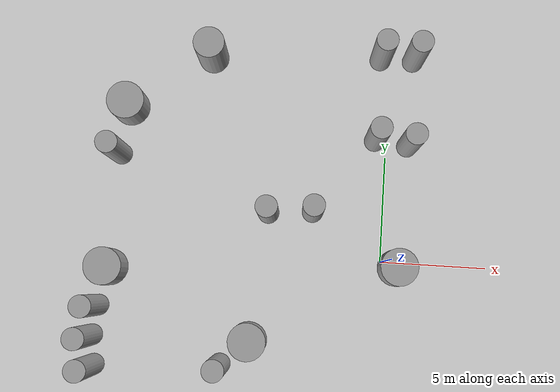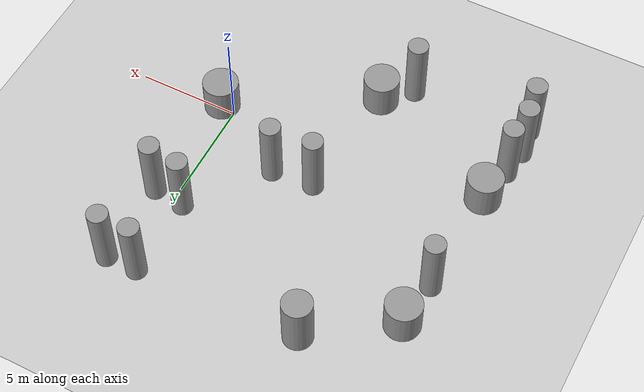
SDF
<sdf version="1.7">
 <world name="default">
  <model name="ground_plane">
   <static>1</static>
   <link name="link">
    <collision name="collision">
     <geometry><plane><normal>0 0 1</normal><size>100 100</size></plane></geometry>
     <surface>
      <contact><collide_bitmask>65535</collide_bitmask></contact>
      <friction><ode><mu>100</mu><mu2>50</mu2></ode></friction>
     </surface>
    </collision>
    <visual name="visual">
     <cast_shadows>0</cast_shadows>
     <geometry><plane><normal>0 0 1</normal><size>100 100</size></plane></geometry>
     <material>
      <script><uri>file://media/materials/scripts/gazebo.material</uri><name>Gazebo/Grey</name></script>
     </material>
    </visual>
   </link>
  </model>
  <model name="long_cylinder">
   <link name="link_5">
    <inertial>
     <mass>3.60259</mass>
     <inertia><ixx>4.12154</ixx><ixy>0</ixy><ixz>0</ixz><iyy>4.12154</iyy><iyz>0</iyz><izz>0.450323</izz></inertia>
    </inertial>
    <pose>0 -2e-06 0 0 -0 0</pose>
    <visual name="visual">
     <geometry><cylinder><radius>0.5</radius><length>3.60259</length></cylinder></geometry>
     <material>
      <lighting>1</lighting>
      <script><uri>file://media/materials/scripts/gazebo.material</uri><name>Gazebo/Grey</name></script>
      <shader type="pixel"/>
      <emissive>0 0 0 1</emissive>
     </material>
    </visual>
    <collision name="collision">
     <geometry><cylinder><radius>0.5</radius><length>3.60258</length></cylinder></geometry>
     <surface>
      <friction>
       <ode><mu>1</mu><mu2>1</mu2><fdir1>0 0 0</fdir1><slip1>0</slip1><slip2>0</slip2></ode>
       <torsional>
        <coefficient>1</coefficient>
        <patch_radius>0</patch_radius>
        <surface_radius>0</surface_radius>
        <use_patch_radius>1</use_patch_radius>
        <ode><slip>0</slip></ode>
       </torsional>
      </friction>
      <bounce><restitution_coefficient>0</restitution_coefficient><threshold>1e+06</threshold></bounce>
      <contact>
       <collide_without_contact>0</collide_without_contact>
       <collide_without_contact_bitmask>1</collide_without_contact_bitmask>
       <collide_bitmask>1</collide_bitmask>
       <ode>
        <soft_cfm>0</soft_cfm>
        <soft_erp>0.2</soft_erp>
        <kp>1e+13</kp>
        <kd>1</kd>
        <max_vel>0.01</max_vel>
        <min_depth>0</min_depth>
       </ode>
       <bullet>
        <split_impulse>1</split_impulse>
        <split_impulse_penetration_threshold>-0.01</split_impulse_penetration_threshold>
        <soft_cfm>0</soft_cfm>
        <soft_erp>0.2</soft_erp>
        <kp>1e+13</kp>
        <kd>1</kd>
       </bullet>
      </contact>
     </surface>
    </collision>
   </link>
   <static>0</static>
   <pose>1.0868 9.76973 1.80129 0 -0 0</pose>
  </model>
  <model name="long_cylinder_0">
   <link name="link_5">
    <inertial>
     <mass>3.60259</mass>
     <inertia><ixx>4.12154</ixx><ixy>0</ixy><ixz>0</ixz><iyy>4.12154</iyy><iyz>0</iyz><izz>0.450323</izz></inertia>
    </inertial>
    <pose>0 -2e-06 0 0 -0 0</pose>
    <visual name="visual">
     <geometry><cylinder><radius>0.5</radius><length>3.60259</length></cylinder></geometry>
     <material>
      <lighting>1</lighting>
      <script><uri>file://media/materials/scripts/gazebo.material</uri><name>Gazebo/Grey</name></script>
      <shader type="pixel"/>
      <emissive>0 0 0 1</emissive>
     </material>
    </visual>
    <collision name="collision">
     <geometry><cylinder><radius>0.5</radius><length>3.60258</length></cylinder></geometry>
     <surface>
      <friction>
       <ode><mu>1</mu><mu2>1</mu2><fdir1>0 0 0</fdir1><slip1>0</slip1><slip2>0</slip2></ode>
       <torsional>
        <coefficient>1</coefficient>
        <patch_radius>0</patch_radius>
        <surface_radius>0</surface_radius>
        <use_patch_radius>1</use_patch_radius>
        <ode><slip>0</slip></ode>
       </torsional>
      </friction>
      <bounce><restitution_coefficient>0</restitution_coefficient><threshold>1e+06</threshold></bounce>
      <contact>
       <collide_without_contact>0</collide_without_contact>
       <collide_without_contact_bitmask>1</collide_without_contact_bitmask>
       <collide_bitmask>1</collide_bitmask>
       <ode>
        <soft_cfm>0</soft_cfm>
        <soft_erp>0.2</soft_erp>
        <kp>1e+13</kp>
        <kd>1</kd>
        <max_vel>0.01</max_vel>
        <min_depth>0</min_depth>
       </ode>
       <bullet>
        <split_impulse>1</split_impulse>
        <split_impulse_penetration_threshold>-0.01</split_impulse_penetration_threshold>
        <soft_cfm>0</soft_cfm>
        <soft_erp>0.2</soft_erp>
        <kp>1e+13</kp>
        <kd>1</kd>
       </bullet>
      </contact>
     </surface>
    </collision>
   </link>
   <static>0</static>
   <pose>1.01152 5.61061 1.80129 0 -0 0</pose>
  </model>
  <model name="big_cylinder_3">
   <link name="link_6">
    <inertial>
     <mass>5.40188</mass>
     <inertia><ixx>2.45932</ixx><ixy>0</ixy><ixz>0</ixz><iyy>2.45932</iyy><iyz>0</iyz><izz>2.03968</izz></inertia>
    </inertial>
    <pose>3e-06 3e-06 0 0 -0 0</pose>
    <visual name="visual">
     <geometry><cylinder><radius>0.869008</radius><length>1.78822</length></cylinder></geometry>
     <material>
      <lighting>1</lighting>
      <script><uri>file://media/materials/scripts/gazebo.material</uri><name>Gazebo/Grey</name></script>
      <shader type="pixel"/>
     </material>
    </visual>
    <collision name="collision">
     <geometry><cylinder><radius>0.869008</radius><length>1.78822</length></cylinder></geometry>
     <surface>
      <friction>
       <ode><mu>1</mu><mu2>1</mu2><fdir1>0 0 0</fdir1><slip1>0</slip1><slip2>0</slip2></ode>
       <torsional>
        <coefficient>1</coefficient>
        <patch_radius>0</patch_radius>
        <surface_radius>0</surface_radius>
        <use_patch_radius>1</use_patch_radius>
        <ode><slip>0</slip></ode>
       </torsional>
      </friction>
      <bounce><restitution_coefficient>0</restitution_coefficient><threshold>1e+06</threshold></bounce>
      <contact>
       <collide_without_contact>0</collide_without_contact>
       <collide_without_contact_bitmask>1</collide_without_contact_bitmask>
       <collide_bitmask>1</collide_bitmask>
       <ode>
        <soft_cfm>0</soft_cfm>
        <soft_erp>0.2</soft_erp>
        <kp>1e+13</kp>
        <kd>1</kd>
        <max_vel>0.01</max_vel>
        <min_depth>0</min_depth>
       </ode>
       <bullet>
        <split_impulse>1</split_impulse>
        <split_impulse_penetration_threshold>-0.01</split_impulse_penetration_threshold>
        <soft_cfm>0</soft_cfm>
        <soft_erp>0.2</soft_erp>
        <kp>1e+13</kp>
        <kd>1</kd>
       </bullet>
      </contact>
     </surface>
    </collision>
   </link>
   <static>0</static>
   <pose>0.750403 -0.209836 0.89411 0 -0 0</pose>
  </model>
  <model name="long_cylinder_1">
   <link name="link_5">
    <inertial>
     <mass>3.60259</mass>
     <inertia><ixx>4.12154</ixx><ixy>0</ixy><ixz>0</ixz><iyy>4.12154</iyy><iyz>0</iyz><izz>0.450323</izz></inertia>
    </inertial>
    <pose>0 -2e-06 0 0 -0 0</pose>
    <visual name="visual">
     <geometry><cylinder><radius>0.5</radius><length>3.60259</length></cylinder></geometry>
     <material>
      <lighting>1</lighting>
      <script><uri>file://media/materials/scripts/gazebo.material</uri><name>Gazebo/Grey</name></script>
      <shader type="pixel"/>
      <emissive>0 0 0 1</emissive>
     </material>
    </visual>
    <collision name="collision">
     <geometry><cylinder><radius>0.5</radius><length>3.60258</length></cylinder></geometry>
     <surface>
      <friction>
       <ode><mu>1</mu><mu2>1</mu2><fdir1>0 0 0</fdir1><slip1>0</slip1><slip2>0</slip2></ode>
       <torsional>
        <coefficient>1</coefficient>
        <patch_radius>0</patch_radius>
        <surface_radius>0</surface_radius>
        <use_patch_radius>1</use_patch_radius>
        <ode><slip>0</slip></ode>
       </torsional>
      </friction>
      <bounce><restitution_coefficient>0</restitution_coefficient><threshold>1e+06</threshold></bounce>
      <contact>
       <collide_without_contact>0</collide_without_contact>
       <collide_without_contact_bitmask>1</collide_without_contact_bitmask>
       <collide_bitmask>1</collide_bitmask>
       <ode>
        <soft_cfm>0</soft_cfm>
        <soft_erp>0.2</soft_erp>
        <kp>1e+13</kp>
        <kd>1</kd>
        <max_vel>0.01</max_vel>
        <min_depth>0</min_depth>
       </ode>
       <bullet>
        <split_impulse>1</split_impulse>
        <split_impulse_penetration_threshold>-0.01</split_impulse_penetration_threshold>
        <soft_cfm>0</soft_cfm>
        <soft_erp>0.2</soft_erp>
        <kp>1e+13</kp>
        <kd>1</kd>
       </bullet>
      </contact>
     </surface>
    </collision>
   </link>
   <static>0</static>
   <pose>-13.1256 -5.521 1.80129 0 -0 0</pose>
  </model>
  <model name="long_cylinder_2">
   <link name="link_5">
    <inertial>
     <mass>3.60259</mass>
     <inertia><ixx>4.12154</ixx><ixy>0</ixy><ixz>0</ixz><iyy>4.12154</iyy><iyz>0</iyz><izz>0.450323</izz></inertia>
    </inertial>
    <pose>0 -2e-06 0 0 -0 0</pose>
    <visual name="visual">
     <geometry><cylinder><radius>0.5</radius><length>3.60259</length></cylinder></geometry>
     <material>
      <lighting>1</lighting>
      <script><uri>file://media/materials/scripts/gazebo.material</uri><name>Gazebo/Grey</name></script>
      <shader type="pixel"/>
      <emissive>0 0 0 1</emissive>
     </material>
    </visual>
    <collision name="collision">
     <geometry><cylinder><radius>0.5</radius><length>3.60258</length></cylinder></geometry>
     <surface>
      <friction>
       <ode><mu>1</mu><mu2>1</mu2><fdir1>0 0 0</fdir1><slip1>0</slip1><slip2>0</slip2></ode>
       <torsional>
        <coefficient>1</coefficient>
        <patch_radius>0</patch_radius>
        <surface_radius>0</surface_radius>
        <use_patch_radius>1</use_patch_radius>
        <ode><slip>0</slip></ode>
       </torsional>
      </friction>
      <bounce><restitution_coefficient>0</restitution_coefficient><threshold>1e+06</threshold></bounce>
      <contact>
       <collide_without_contact>0</collide_without_contact>
       <collide_without_contact_bitmask>1</collide_without_contact_bitmask>
       <collide_bitmask>1</collide_bitmask>
       <ode>
        <soft_cfm>0</soft_cfm>
        <soft_erp>0.2</soft_erp>
        <kp>1e+13</kp>
        <kd>1</kd>
        <max_vel>0.01</max_vel>
        <min_depth>0</min_depth>
       </ode>
       <bullet>
        <split_impulse>1</split_impulse>
        <split_impulse_penetration_threshold>-0.01</split_impulse_penetration_threshold>
        <soft_cfm>0</soft_cfm>
        <soft_erp>0.2</soft_erp>
        <kp>1e+13</kp>
        <kd>1</kd>
       </bullet>
      </contact>
     </surface>
    </collision>
   </link>
   <static>0</static>
   <pose>-13.3092 -4.16594 1.80129 0 -0 0</pose>
  </model>
  <model name="long_cylinder_3">
   <link name="link_5">
    <inertial>
     <mass>3.60259</mass>
     <inertia><ixx>4.12154</ixx><ixy>0</ixy><ixz>0</ixz><iyy>4.12154</iyy><iyz>0</iyz><izz>0.450323</izz></inertia>
    </inertial>
    <pose>0 -2e-06 0 0 -0 0</pose>
    <visual name="visual">
     <geometry><cylinder><radius>0.5</radius><length>3.60259</length></cylinder></geometry>
     <material>
      <lighting>1</lighting>
      <script><uri>file://media/materials/scripts/gazebo.material</uri><name>Gazebo/Grey</name></script>
      <shader type="pixel"/>
      <emissive>0 0 0 1</emissive>
     </material>
    </visual>
    <collision name="collision">
     <geometry><cylinder><radius>0.5</radius><length>3.60258</length></cylinder></geometry>
     <surface>
      <friction>
       <ode><mu>1</mu><mu2>1</mu2><fdir1>0 0 0</fdir1><slip1>0</slip1><slip2>0</slip2></ode>
       <torsional>
        <coefficient>1</coefficient>
        <patch_radius>0</patch_radius>
        <surface_radius>0</surface_radius>
        <use_patch_radius>1</use_patch_radius>
        <ode><slip>0</slip></ode>
       </torsional>
      </friction>
      <bounce><restitution_coefficient>0</restitution_coefficient><threshold>1e+06</threshold></bounce>
      <contact>
       <collide_without_contact>0</collide_without_contact>
       <collide_without_contact_bitmask>1</collide_without_contact_bitmask>
       <collide_bitmask>1</collide_bitmask>
       <ode>
        <soft_cfm>0</soft_cfm>
        <soft_erp>0.2</soft_erp>
        <kp>1e+13</kp>
        <kd>1</kd>
        <max_vel>0.01</max_vel>
        <min_depth>0</min_depth>
       </ode>
       <bullet>
        <split_impulse>1</split_impulse>
        <split_impulse_penetration_threshold>-0.01</split_impulse_penetration_threshold>
        <soft_cfm>0</soft_cfm>
        <soft_erp>0.2</soft_erp>
        <kp>1e+13</kp>
        <kd>1</kd>
       </bullet>
      </contact>
     </surface>
    </collision>
   </link>
   <static>0</static>
   <pose>-13.1272 -2.76523 1.80129 0 -0 0</pose>
  </model>
  <model name="big_cylinder_4">
   <link name="link_6">
    <inertial>
     <mass>5.40188</mass>
     <inertia><ixx>2.45932</ixx><ixy>0</ixy><ixz>0</ixz><iyy>2.45932</iyy><iyz>0</iyz><izz>2.03968</izz></inertia>
    </inertial>
    <pose>3e-06 3e-06 0 0 -0 0</pose>
    <visual name="visual">
     <geometry><cylinder><radius>0.869008</radius><length>1.78822</length></cylinder></geometry>
     <material>
      <lighting>1</lighting>
      <script><uri>file://media/materials/scripts/gazebo.material</uri><name>Gazebo/Grey</name></script>
      <shader type="pixel"/>
     </material>
    </visual>
    <collision name="collision">
     <geometry><cylinder><radius>0.869008</radius><length>1.78822</length></cylinder></geometry>
     <surface>
      <friction>
       <ode><mu>1</mu><mu2>1</mu2><fdir1>0 0 0</fdir1><slip1>0</slip1><slip2>0</slip2></ode>
       <torsional>
        <coefficient>1</coefficient>
        <patch_radius>0</patch_radius>
        <surface_radius>0</surface_radius>
        <use_patch_radius>1</use_patch_radius>
        <ode><slip>0</slip></ode>
       </torsional>
      </friction>
      <bounce><restitution_coefficient>0</restitution_coefficient><threshold>1e+06</threshold></bounce>
      <contact>
       <collide_without_contact>0</collide_without_contact>
       <collide_without_contact_bitmask>1</collide_without_contact_bitmask>
       <collide_bitmask>1</collide_bitmask>
       <ode>
        <soft_cfm>0</soft_cfm>
        <soft_erp>0.2</soft_erp>
        <kp>1e+13</kp>
        <kd>1</kd>
        <max_vel>0.01</max_vel>
        <min_depth>0</min_depth>
       </ode>
       <bullet>
        <split_impulse>1</split_impulse>
        <split_impulse_penetration_threshold>-0.01</split_impulse_penetration_threshold>
        <soft_cfm>0</soft_cfm>
        <soft_erp>0.2</soft_erp>
        <kp>1e+13</kp>
        <kd>1</kd>
       </bullet>
      </contact>
     </surface>
    </collision>
   </link>
   <static>0</static>
   <pose>-12.7305 -0.952589 0.89411 0 -0 0</pose>
  </model>
  <model name="long_cylinder_4">
   <link name="link_5">
    <inertial>
     <mass>3.60259</mass>
     <inertia><ixx>4.12154</ixx><ixy>0</ixy><ixz>0</ixz><iyy>4.12154</iyy><iyz>0</iyz><izz>0.450323</izz></inertia>
    </inertial>
    <pose>0 -2e-06 0 0 -0 0</pose>
    <visual name="visual">
     <geometry><cylinder><radius>0.5</radius><length>3.60259</length></cylinder></geometry>
     <material>
      <lighting>1</lighting>
      <script><uri>file://media/materials/scripts/gazebo.material</uri><name>Gazebo/Grey</name></script>
      <shader type="pixel"/>
      <emissive>0 0 0 1</emissive>
     </material>
    </visual>
    <collision name="collision">
     <geometry><cylinder><radius>0.5</radius><length>3.60258</length></cylinder></geometry>
     <surface>
      <friction>
       <ode><mu>1</mu><mu2>1</mu2><fdir1>0 0 0</fdir1><slip1>0</slip1><slip2>0</slip2></ode>
       <torsional>
        <coefficient>1</coefficient>
        <patch_radius>0</patch_radius>
        <surface_radius>0</surface_radius>
        <use_patch_radius>1</use_patch_radius>
        <ode><slip>0</slip></ode>
       </torsional>
      </friction>
      <bounce><restitution_coefficient>0</restitution_coefficient><threshold>1e+06</threshold></bounce>
      <contact>
       <collide_without_contact>0</collide_without_contact>
       <collide_without_contact_bitmask>1</collide_without_contact_bitmask>
       <collide_bitmask>1</collide_bitmask>
       <ode>
        <soft_cfm>0</soft_cfm>
        <soft_erp>0.2</soft_erp>
        <kp>1e+13</kp>
        <kd>1</kd>
        <max_vel>0.01</max_vel>
        <min_depth>0</min_depth>
       </ode>
       <bullet>
        <split_impulse>1</split_impulse>
        <split_impulse_penetration_threshold>-0.01</split_impulse_penetration_threshold>
        <soft_cfm>0</soft_cfm>
        <soft_erp>0.2</soft_erp>
        <kp>1e+13</kp>
        <kd>1</kd>
       </bullet>
      </contact>
     </surface>
    </collision>
   </link>
   <static>0</static>
   <pose>-5.39755 2.03438 1.80129 0 -0 0</pose>
  </model>
  <model name="big_cylinder_5">
   <link name="link_6">
    <inertial>
     <mass>5.40188</mass>
     <inertia><ixx>2.45932</ixx><ixy>0</ixy><ixz>0</ixz><iyy>2.45932</iyy><iyz>0</iyz><izz>2.03968</izz></inertia>
    </inertial>
    <pose>3e-06 3e-06 0 0 -0 0</pose>
    <visual name="visual">
     <geometry><cylinder><radius>0.869008</radius><length>1.78822</length></cylinder></geometry>
     <material>
      <lighting>1</lighting>
      <script><uri>file://media/materials/scripts/gazebo.material</uri><name>Gazebo/Grey</name></script>
      <shader type="pixel"/>
     </material>
    </visual>
    <collision name="collision">
     <geometry><cylinder><radius>0.869008</radius><length>1.78822</length></cylinder></geometry>
     <surface>
      <friction>
       <ode><mu>1</mu><mu2>1</mu2><fdir1>0 0 0</fdir1><slip1>0</slip1><slip2>0</slip2></ode>
       <torsional>
        <coefficient>1</coefficient>
        <patch_radius>0</patch_radius>
        <surface_radius>0</surface_radius>
        <use_patch_radius>1</use_patch_radius>
        <ode><slip>0</slip></ode>
       </torsional>
      </friction>
      <bounce><restitution_coefficient>0</restitution_coefficient><threshold>1e+06</threshold></bounce>
      <contact>
       <collide_without_contact>0</collide_without_contact>
       <collide_without_contact_bitmask>1</collide_without_contact_bitmask>
       <collide_bitmask>1</collide_bitmask>
       <ode>
        <soft_cfm>0</soft_cfm>
        <soft_erp>0.2</soft_erp>
        <kp>1e+13</kp>
        <kd>1</kd>
        <max_vel>0.01</max_vel>
        <min_depth>0</min_depth>
       </ode>
       <bullet>
        <split_impulse>1</split_impulse>
        <split_impulse_penetration_threshold>-0.01</split_impulse_penetration_threshold>
        <soft_cfm>0</soft_cfm>
        <soft_erp>0.2</soft_erp>
        <kp>1e+13</kp>
        <kd>1</kd>
       </bullet>
      </contact>
     </surface>
    </collision>
   </link>
   <static>0</static>
   <pose>-12.2818 6.73654 0.89411 0 -0 0</pose>
  </model>
  <model name="big_cylinder_6">
   <link name="link_6">
    <inertial>
     <mass>5.40188</mass>
     <inertia><ixx>2.45932</ixx><ixy>0</ixy><ixz>0</ixz><iyy>2.45932</iyy><iyz>0</iyz><izz>2.03968</izz></inertia>
    </inertial>
    <pose>3e-06 3e-06 0 0 -0 0</pose>
    <visual name="visual">
     <geometry><cylinder><radius>0.869008</radius><length>1.78822</length></cylinder></geometry>
     <material>
      <lighting>1</lighting>
      <script><uri>file://media/materials/scripts/gazebo.material</uri><name>Gazebo/Grey</name></script>
      <shader type="pixel"/>
     </material>
    </visual>
    <collision name="collision">
     <geometry><cylinder><radius>0.869008</radius><length>1.78822</length></cylinder></geometry>
     <surface>
      <friction>
       <ode><mu>1</mu><mu2>1</mu2><fdir1>0 0 0</fdir1><slip1>0</slip1><slip2>0</slip2></ode>
       <torsional>
        <coefficient>1</coefficient>
        <patch_radius>0</patch_radius>
        <surface_radius>0</surface_radius>
        <use_patch_radius>1</use_patch_radius>
        <ode><slip>0</slip></ode>
       </torsional>
      </friction>
      <bounce><restitution_coefficient>0</restitution_coefficient><threshold>1e+06</threshold></bounce>
      <contact>
       <collide_without_contact>0</collide_without_contact>
       <collide_without_contact_bitmask>1</collide_without_contact_bitmask>
       <collide_bitmask>1</collide_bitmask>
       <ode>
        <soft_cfm>0</soft_cfm>
        <soft_erp>0.2</soft_erp>
        <kp>1e+13</kp>
        <kd>1</kd>
        <max_vel>0.01</max_vel>
        <min_depth>0</min_depth>
       </ode>
       <bullet>
        <split_impulse>1</split_impulse>
        <split_impulse_penetration_threshold>-0.01</split_impulse_penetration_threshold>
        <soft_cfm>0</soft_cfm>
        <soft_erp>0.2</soft_erp>
        <kp>1e+13</kp>
        <kd>1</kd>
       </bullet>
      </contact>
     </surface>
    </collision>
   </link>
   <static>0</static>
   <pose>-5.97401 -3.98716 0.89411 0 -0 0</pose>
  </model>
  <model name="long_cylinder_5">
   <link name="link_5">
    <inertial>
     <mass>3.60259</mass>
     <inertia><ixx>4.12154</ixx><ixy>0</ixy><ixz>0</ixz><iyy>4.12154</iyy><iyz>0</iyz><izz>0.450323</izz></inertia>
    </inertial>
    <pose>0 -2e-06 0 0 -0 0</pose>
    <visual name="visual">
     <geometry><cylinder><radius>0.5</radius><length>3.60259</length></cylinder></geometry>
     <material>
      <lighting>1</lighting>
      <script><uri>file://media/materials/scripts/gazebo.material</uri><name>Gazebo/Grey</name></script>
      <shader type="pixel"/>
      <emissive>0 0 0 1</emissive>
     </material>
    </visual>
    <collision name="collision">
     <geometry><cylinder><radius>0.5</radius><length>3.60258</length></cylinder></geometry>
     <surface>
      <friction>
       <ode><mu>1</mu><mu2>1</mu2><fdir1>0 0 0</fdir1><slip1>0</slip1><slip2>0</slip2></ode>
       <torsional>
        <coefficient>1</coefficient>
        <patch_radius>0</patch_radius>
        <surface_radius>0</surface_radius>
        <use_patch_radius>1</use_patch_radius>
        <ode><slip>0</slip></ode>
       </torsional>
      </friction>
      <bounce><restitution_coefficient>0</restitution_coefficient><threshold>1e+06</threshold></bounce>
      <contact>
       <collide_without_contact>0</collide_without_contact>
       <collide_without_contact_bitmask>1</collide_without_contact_bitmask>
       <collide_bitmask>1</collide_bitmask>
       <ode>
        <soft_cfm>0</soft_cfm>
        <soft_erp>0.2</soft_erp>
        <kp>1e+13</kp>
        <kd>1</kd>
        <max_vel>0.01</max_vel>
        <min_depth>0</min_depth>
       </ode>
       <bullet>
        <split_impulse>1</split_impulse>
        <split_impulse_penetration_threshold>-0.01</split_impulse_penetration_threshold>
        <soft_cfm>0</soft_cfm>
        <soft_erp>0.2</soft_erp>
        <kp>1e+13</kp>
        <kd>1</kd>
       </bullet>
      </contact>
     </surface>
    </collision>
   </link>
   <static>0</static>
   <pose>-7.2424 -5.1601 1.80128 0 -0 0</pose>
  </model>
  <model name="long_cylinder_6">
   <link name="link_5">
    <inertial>
     <mass>3.60259</mass>
     <inertia><ixx>4.12154</ixx><ixy>0</ixy><ixz>0</ixz><iyy>4.12154</iyy><iyz>0</iyz><izz>0.450323</izz></inertia>
    </inertial>
    <pose>0 -2e-06 0 0 -0 0</pose>
    <visual name="visual">
     <geometry><cylinder><radius>0.5</radius><length>3.60259</length></cylinder></geometry>
     <material>
      <lighting>1</lighting>
      <script><uri>file://media/materials/scripts/gazebo.material</uri><name>Gazebo/Grey</name></script>
      <shader type="pixel"/>
      <emissive>0 0 0 1</emissive>
     </material>
    </visual>
    <collision name="collision">
     <geometry><cylinder><radius>0.5</radius><length>3.60258</length></cylinder></geometry>
     <surface>
      <friction>
       <ode><mu>1</mu><mu2>1</mu2><fdir1>0 0 0</fdir1><slip1>0</slip1><slip2>0</slip2></ode>
       <torsional>
        <coefficient>1</coefficient>
        <patch_radius>0</patch_radius>
        <surface_radius>0</surface_radius>
        <use_patch_radius>1</use_patch_radius>
        <ode><slip>0</slip></ode>
       </torsional>
      </friction>
      <bounce><restitution_coefficient>0</restitution_coefficient><threshold>1e+06</threshold></bounce>
      <contact>
       <collide_without_contact>0</collide_without_contact>
       <collide_without_contact_bitmask>1</collide_without_contact_bitmask>
       <collide_bitmask>1</collide_bitmask>
       <ode>
        <soft_cfm>0</soft_cfm>
        <soft_erp>0.2</soft_erp>
        <kp>1e+13</kp>
        <kd>1</kd>
        <max_vel>0.01</max_vel>
        <min_depth>0</min_depth>
       </ode>
       <bullet>
        <split_impulse>1</split_impulse>
        <split_impulse_penetration_threshold>-0.01</split_impulse_penetration_threshold>
        <soft_cfm>0</soft_cfm>
        <soft_erp>0.2</soft_erp>
        <kp>1e+13</kp>
        <kd>1</kd>
       </bullet>
      </contact>
     </surface>
    </collision>
   </link>
   <static>0</static>
   <pose>-3.31447 2.20449 1.80129 0 -0 0</pose>
  </model>
  <model name="long_cylinder_7">
   <link name="link_5">
    <inertial>
     <mass>3.60259</mass>
     <inertia><ixx>4.12154</ixx><ixy>0</ixy><ixz>0</ixz><iyy>4.12154</iyy><iyz>0</iyz><izz>0.450323</izz></inertia>
    </inertial>
    <pose>0 -2e-06 0 0 -0 0</pose>
    <visual name="visual">
     <geometry><cylinder><radius>0.5</radius><length>3.60259</length></cylinder></geometry>
     <material>
      <lighting>1</lighting>
      <script><uri>file://media/materials/scripts/gazebo.material</uri><name>Gazebo/Grey</name></script>
      <shader type="pixel"/>
      <emissive>0 0 0 1</emissive>
     </material>
    </visual>
    <collision name="collision">
     <geometry><cylinder><radius>0.5</radius><length>3.60258</length></cylinder></geometry>
     <surface>
      <friction>
       <ode><mu>1</mu><mu2>1</mu2><fdir1>0 0 0</fdir1><slip1>0</slip1><slip2>0</slip2></ode>
       <torsional>
        <coefficient>1</coefficient>
        <patch_radius>0</patch_radius>
        <surface_radius>0</surface_radius>
        <use_patch_radius>1</use_patch_radius>
        <ode><slip>0</slip></ode>
       </torsional>
      </friction>
      <bounce><restitution_coefficient>0</restitution_coefficient><threshold>1e+06</threshold></bounce>
      <contact>
       <collide_without_contact>0</collide_without_contact>
       <collide_without_contact_bitmask>1</collide_without_contact_bitmask>
       <collide_bitmask>1</collide_bitmask>
       <ode>
        <soft_cfm>0</soft_cfm>
        <soft_erp>0.2</soft_erp>
        <kp>1e+13</kp>
        <kd>1</kd>
        <max_vel>0.01</max_vel>
        <min_depth>0</min_depth>
       </ode>
       <bullet>
        <split_impulse>1</split_impulse>
        <split_impulse_penetration_threshold>-0.01</split_impulse_penetration_threshold>
        <soft_cfm>0</soft_cfm>
        <soft_erp>0.2</soft_erp>
        <kp>1e+13</kp>
        <kd>1</kd>
       </bullet>
      </contact>
     </surface>
    </collision>
   </link>
   <static>0</static>
   <pose>-12.5803 4.45239 1.80128 0 -0 0</pose>
  </model>
  <model name="long_cylinder_8">
   <link name="link_5">
    <inertial>
     <mass>3.60259</mass>
     <inertia><ixx>4.12154</ixx><ixy>0</ixy><ixz>0</ixz><iyy>4.12154</iyy><iyz>0</iyz><izz>0.450323</izz></inertia>
    </inertial>
    <pose>0 -2e-06 0 0 -0 0</pose>
    <visual name="visual">
     <geometry><cylinder><radius>0.5</radius><length>3.60259</length></cylinder></geometry>
     <material>
      <lighting>1</lighting>
      <script><uri>file://media/materials/scripts/gazebo.material</uri><name>Gazebo/Grey</name></script>
      <shader type="pixel"/>
      <emissive>0 0 0 1</emissive>
     </material>
    </visual>
    <collision name="collision">
     <geometry><cylinder><radius>0.5</radius><length>3.60258</length></cylinder></geometry>
     <surface>
      <friction>
       <ode><mu>1</mu><mu2>1</mu2><fdir1>0 0 0</fdir1><slip1>0</slip1><slip2>0</slip2></ode>
       <torsional>
        <coefficient>1</coefficient>
        <patch_radius>0</patch_radius>
        <surface_radius>0</surface_radius>
        <use_patch_radius>1</use_patch_radius>
        <ode><slip>0</slip></ode>
       </torsional>
      </friction>
      <bounce><restitution_coefficient>0</restitution_coefficient><threshold>1e+06</threshold></bounce>
      <contact>
       <collide_without_contact>0</collide_without_contact>
       <collide_without_contact_bitmask>1</collide_without_contact_bitmask>
       <collide_bitmask>1</collide_bitmask>
       <ode>
        <soft_cfm>0</soft_cfm>
        <soft_erp>0.2</soft_erp>
        <kp>1e+13</kp>
        <kd>1</kd>
        <max_vel>0.01</max_vel>
        <min_depth>0</min_depth>
       </ode>
       <bullet>
        <split_impulse>1</split_impulse>
        <split_impulse_penetration_threshold>-0.01</split_impulse_penetration_threshold>
        <soft_cfm>0</soft_cfm>
        <soft_erp>0.2</soft_erp>
        <kp>1e+13</kp>
        <kd>1</kd>
       </bullet>
      </contact>
     </surface>
    </collision>
   </link>
   <static>0</static>
   <pose>-0.54529 5.79442 1.80129 0 -0 0</pose>
  </model>
  <model name="long_cylinder_9">
   <link name="link_5">
    <inertial>
     <mass>3.60259</mass>
     <inertia><ixx>4.12154</ixx><ixy>0</ixy><ixz>0</ixz><iyy>4.12154</iyy><iyz>0</iyz><izz>0.450323</izz></inertia>
    </inertial>
    <pose>0 -2e-06 0 0 -0 0</pose>
    <visual name="visual">
     <geometry><cylinder><radius>0.5</radius><length>3.60259</length></cylinder></geometry>
     <material>
      <lighting>1</lighting>
      <script><uri>file://media/materials/scripts/gazebo.material</uri><name>Gazebo/Grey</name></script>
      <shader type="pixel"/>
      <emissive>0 0 0 1</emissive>
     </material>
    </visual>
    <collision name="collision">
     <geometry><cylinder><radius>0.5</radius><length>3.60258</length></cylinder></geometry>
     <surface>
      <friction>
       <ode><mu>1</mu><mu2>1</mu2><fdir1>0 0 0</fdir1><slip1>0</slip1><slip2>0</slip2></ode>
       <torsional>
        <coefficient>1</coefficient>
        <patch_radius>0</patch_radius>
        <surface_radius>0</surface_radius>
        <use_patch_radius>1</use_patch_radius>
        <ode><slip>0</slip></ode>
       </torsional>
      </friction>
      <bounce><restitution_coefficient>0</restitution_coefficient><threshold>1e+06</threshold></bounce>
      <contact>
       <collide_without_contact>0</collide_without_contact>
       <collide_without_contact_bitmask>1</collide_without_contact_bitmask>
       <collide_bitmask>1</collide_bitmask>
       <ode>
        <soft_cfm>0</soft_cfm>
        <soft_erp>0.2</soft_erp>
        <kp>1e+13</kp>
        <kd>1</kd>
        <max_vel>0.01</max_vel>
        <min_depth>0</min_depth>
       </ode>
       <bullet>
        <split_impulse>1</split_impulse>
        <split_impulse_penetration_threshold>-0.01</split_impulse_penetration_threshold>
        <soft_cfm>0</soft_cfm>
        <soft_erp>0.2</soft_erp>
        <kp>1e+13</kp>
        <kd>1</kd>
       </bullet>
      </contact>
     </surface>
    </collision>
   </link>
   <static>0</static>
   <pose>-0.474719 9.74696 1.80128 0 -0 0</pose>
  </model>
  <model name="medium_cylinder">
   <link name="link_7">
    <inertial>
     <mass>5.8515</mass>
     <inertia><ixx>4.76268</ixx><ixy>0</ixy><ixz>0</ixz><iyy>4.76268</iyy><iyz>0</iyz><izz>1.49119</izz></inertia>
    </inertial>
    <pose>-1e-06 1e-06 0 0 -0 0</pose>
    <visual name="visual">
     <geometry><cylinder><radius>0.713918</radius><length>2.8702</length></cylinder></geometry>
     <material>
      <lighting>1</lighting>
      <script><uri>file://media/materials/scripts/gazebo.material</uri><name>Gazebo/Grey</name></script>
      <shader type="pixel"/>
     </material>
    </visual>
    <collision name="collision">
     <geometry><cylinder><radius>0.713918</radius><length>2.8702</length></cylinder></geometry>
     <surface>
      <friction>
       <ode><mu>1</mu><mu2>1</mu2><fdir1>0 0 0</fdir1><slip1>0</slip1><slip2>0</slip2></ode>
       <torsional>
        <coefficient>1</coefficient>
        <patch_radius>0</patch_radius>
        <surface_radius>0</surface_radius>
        <use_patch_radius>1</use_patch_radius>
        <ode><slip>0</slip></ode>
       </torsional>
      </friction>
      <bounce><restitution_coefficient>0</restitution_coefficient><threshold>1e+06</threshold></bounce>
      <contact>
       <collide_without_contact>0</collide_without_contact>
       <collide_without_contact_bitmask>1</collide_without_contact_bitmask>
       <collide_bitmask>1</collide_bitmask>
       <ode>
        <soft_cfm>0</soft_cfm>
        <soft_erp>0.2</soft_erp>
        <kp>1e+13</kp>
        <kd>1</kd>
        <max_vel>0.01</max_vel>
        <min_depth>0</min_depth>
       </ode>
       <bullet>
        <split_impulse>1</split_impulse>
        <split_impulse_penetration_threshold>-0.01</split_impulse_penetration_threshold>
        <soft_cfm>0</soft_cfm>
        <soft_erp>0.2</soft_erp>
        <kp>1e+13</kp>
        <kd>1</kd>
       </bullet>
      </contact>
     </surface>
    </collision>
   </link>
   <static>0</static>
   <pose>-8.49079 9.37257 1.4351 0 -0 0</pose>
  </model>
 </world>
</sdf>
